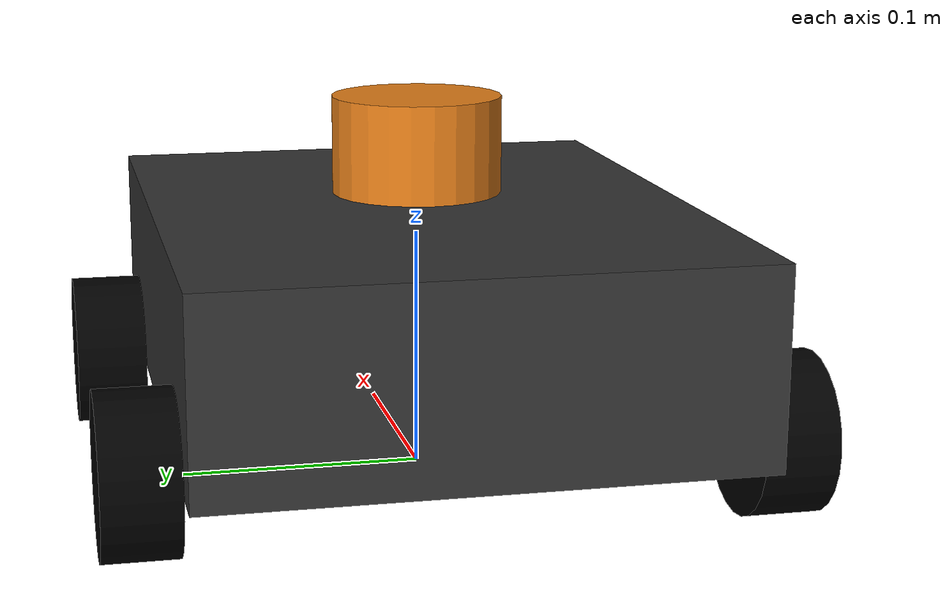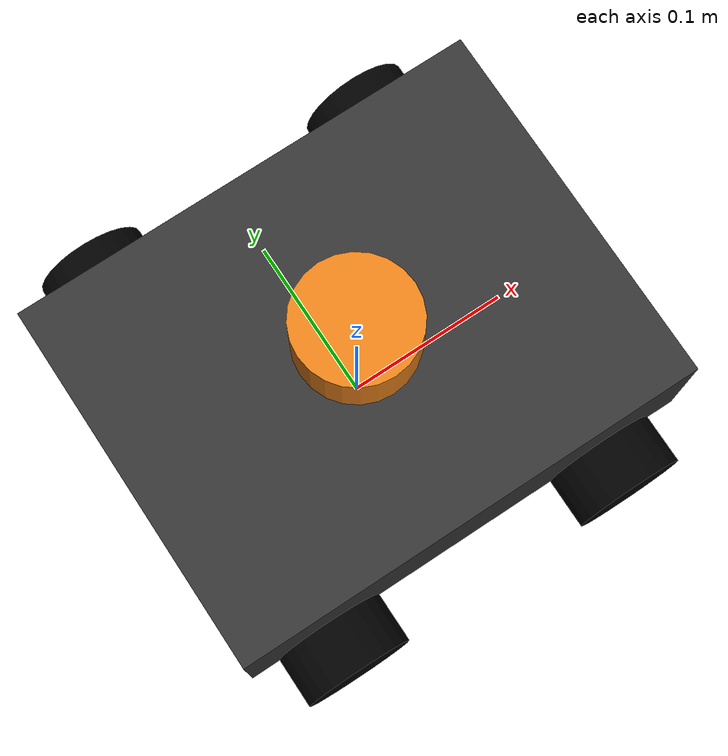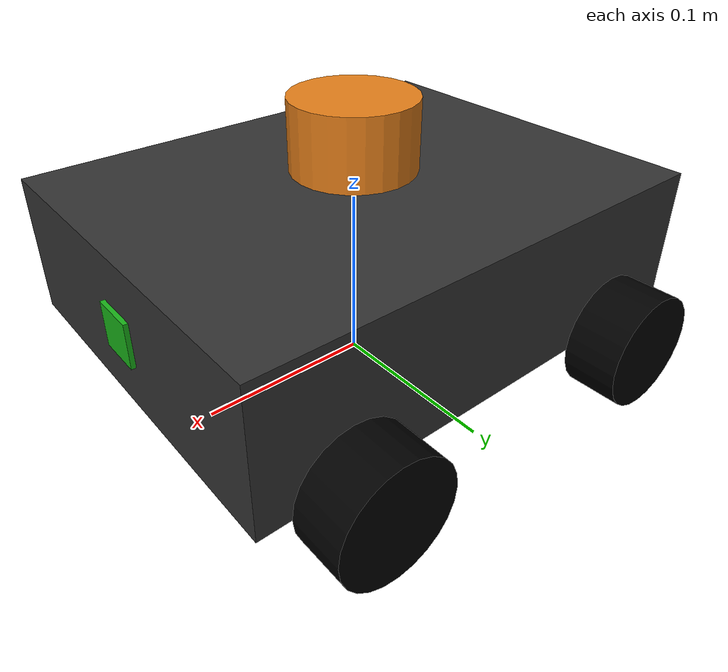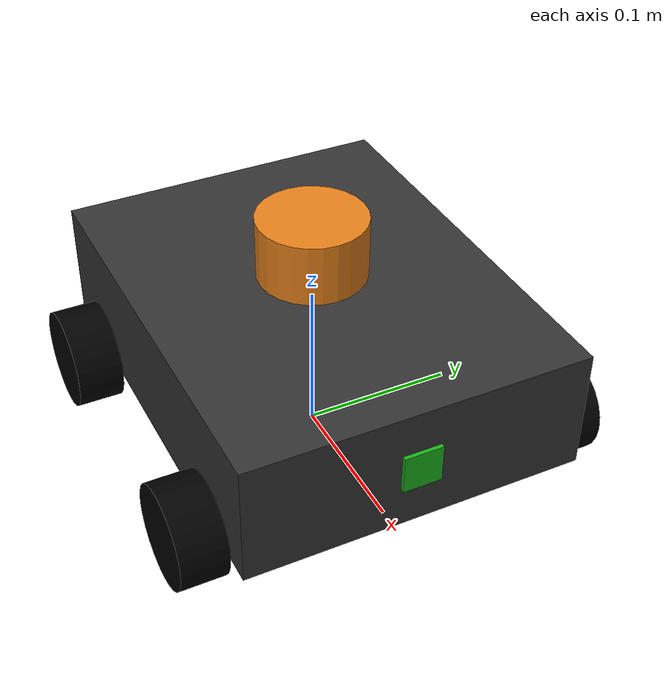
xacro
<?xml version="1.0"?>
<robot xmlns:xacro="http://www.ros.org/wiki/xacro" name="makis_tank">

  <!-- ── Properties ──────────────────────────────────────── -->
  <xacro:property name="body_l"    value="0.28"/>
  <xacro:property name="body_w"    value="0.22"/>
  <xacro:property name="body_h"    value="0.08"/>
  <xacro:property name="wheel_r"   value="0.0325"/>
  <xacro:property name="wheel_w"   value="0.03"/>
  <xacro:property name="wx"        value="0.09"/>
  <xacro:property name="wy"        value="0.125"/>
  <xacro:property name="M_PI"      value="3.14159265"/>

  <!-- ── Materials ─────────────────────────────────────── -->
  <material name="dark_grey">  <color rgba="0.2 0.2 0.2 1.0"/> </material>
  <material name="orange">     <color rgba="0.9 0.5 0.1 1.0"/> </material>
  <material name="black">      <color rgba="0.0 0.0 0.0 1.0"/> </material>
  <material name="green">      <color rgba="0.1 0.7 0.1 1.0"/> </material>

  <!-- ── Wheel macro ────────────────────────────────────── -->
  <xacro:macro name="mecanum_wheel" params="prefix x y">
    <link name="${prefix}_wheel">
      <visual>
        <origin xyz="0 0 0" rpy="${M_PI/2} 0 0"/>
        <geometry><cylinder radius="${wheel_r}" length="${wheel_w}"/></geometry>
        <material name="black"/>
      </visual>
      <collision>
        <origin xyz="0 0 0" rpy="${M_PI/2} 0 0"/>
        <geometry><cylinder radius="${wheel_r}" length="${wheel_w}"/></geometry>
      </collision>
      <inertial>
        <mass value="0.15"/>
        <origin xyz="0 0 0" rpy="${M_PI/2} 0 0"/>
        <inertia ixx="0.000125" ixy="0" ixz="0"
                 iyy="0.000125" iyz="0" izz="0.000237"/>
      </inertial>
    </link>
    <joint name="${prefix}_wheel_joint" type="continuous">
      <parent link="base_link"/>
      <child  link="${prefix}_wheel"/>
      <origin xyz="${x} ${y} 0" rpy="0 0 0"/>
      <axis xyz="0 1 0"/>
    </joint>
  </xacro:macro>

  <!-- ── base_footprint ────────────────────────────────── -->
  <link name="base_footprint"/>

  <joint name="base_footprint_joint" type="fixed">
    <parent link="base_footprint"/>
    <child  link="base_link"/>
    <origin xyz="0 0 ${wheel_r}" rpy="0 0 0"/>
  </joint>

  <!-- ── base_link (chassis) ───────────────────────────── -->
  <link name="base_link">
    <visual>
      <origin xyz="0 0 ${body_h/2}" rpy="0 0 0"/>
      <geometry><box size="${body_l} ${body_w} ${body_h}"/></geometry>
      <material name="dark_grey"/>
    </visual>
    <collision>
      <origin xyz="0 0 ${body_h/2}" rpy="0 0 0"/>
      <geometry><box size="${body_l} ${body_w} ${body_h}"/></geometry>
    </collision>
    <inertial>
      <mass value="2.0"/>
      <origin xyz="0 0 ${body_h/2}"/>
      <inertia ixx="0.0110" ixy="0" ixz="0"
               iyy="0.0170" iyz="0" izz="0.0264"/>
    </inertial>
  </link>

  <!-- ── Wheels ──────────────────────────────────────── -->
  <xacro:mecanum_wheel prefix="fl" x=" ${wx}" y=" ${wy}"/>
  <xacro:mecanum_wheel prefix="fr" x=" ${wx}" y="-${wy}"/>
  <xacro:mecanum_wheel prefix="rl" x="-${wx}" y=" ${wy}"/>
  <xacro:mecanum_wheel prefix="rr" x="-${wx}" y="-${wy}"/>

  <!-- ── LiDAR ─────────────────────────────────────────── -->
  <link name="laser">
    <visual>
      <geometry><cylinder radius="0.035" length="0.04"/></geometry>
      <material name="orange"/>
    </visual>
    <inertial>
      <mass value="0.17"/>
      <inertia ixx="0.0" ixy="0" ixz="0" iyy="0.0" iyz="0" izz="0.0"/>
    </inertial>
  </link>
  <joint name="laser_joint" type="fixed">
    <parent link="base_link"/>
    <child  link="laser"/>
    <origin xyz="0 0 ${body_h + 0.025}" rpy="0 0 0"/>
  </joint>

  <!-- ── IMU ───────────────────────────────────────────── -->
  <link name="imu_link"/>
  <joint name="imu_joint" type="fixed">
    <parent link="base_link"/>
    <child  link="imu_link"/>
    <origin xyz="0 0 ${body_h/2}" rpy="0 0 0"/>
  </joint>

  <!-- ── Camera ────────────────────────────────────────── -->
  <link name="camera_link">
    <visual>
      <origin xyz="0 0 0" rpy="0 0 0"/>
      <geometry><box size="0.025 0.025 0.025"/></geometry>
      <material name="green"/>
    </visual>
    <inertial>
      <mass value="0.03"/>
      <inertia ixx="0.0" ixy="0" ixz="0" iyy="0.0" iyz="0" izz="0.0"/>
    </inertial>
  </link>
  <joint name="camera_joint" type="fixed">
    <parent link="base_link"/>
    <child  link="camera_link"/>
    <origin xyz="${body_l/2 - 0.01} 0 ${body_h/2}" rpy="0 0 0"/>
  </joint>
  <link name="camera_optical_frame"/>
  <joint name="camera_optical_joint" type="fixed">
    <parent link="camera_link"/>
    <child  link="camera_optical_frame"/>
    <!-- ROS camera convention: z forward, x right, y down (rotate -90° pitch, -90° yaw) -->
    <origin xyz="0 0 0" rpy="${-M_PI/2} 0 ${-M_PI/2}"/>
  </joint>

</robot>
